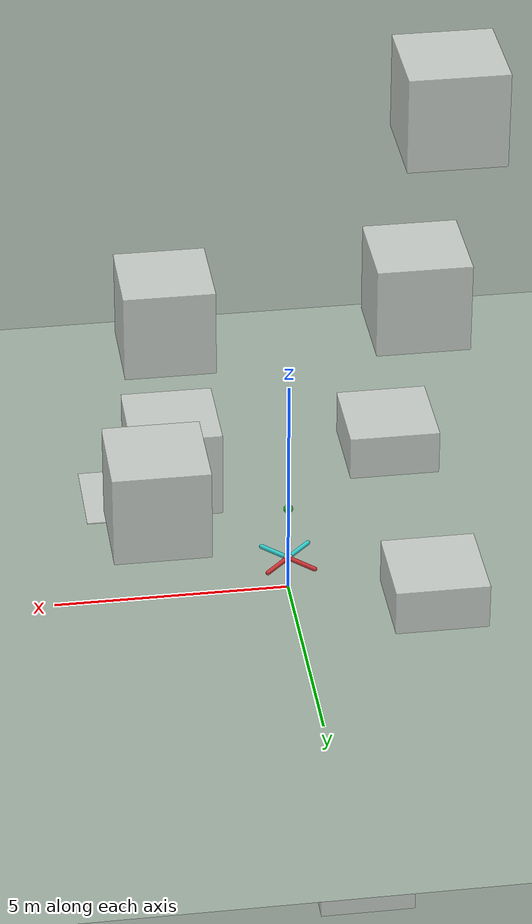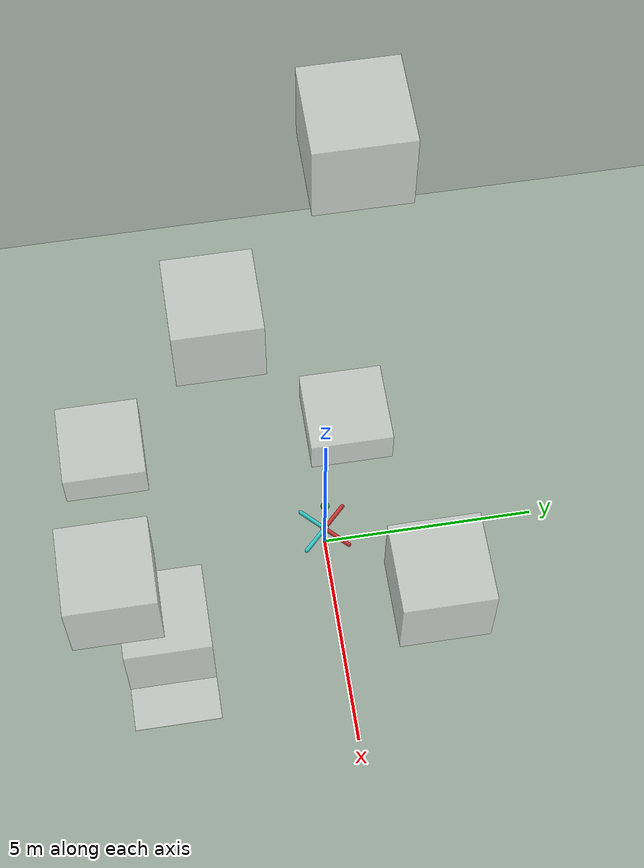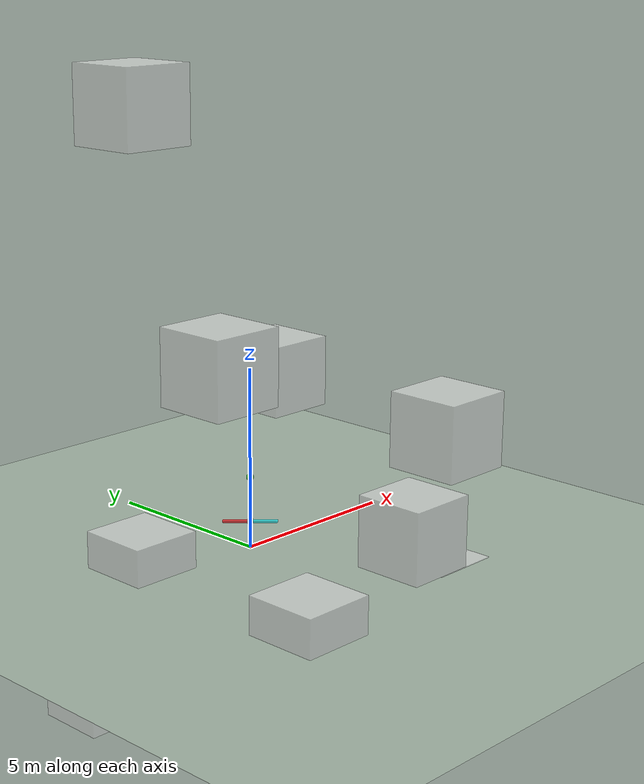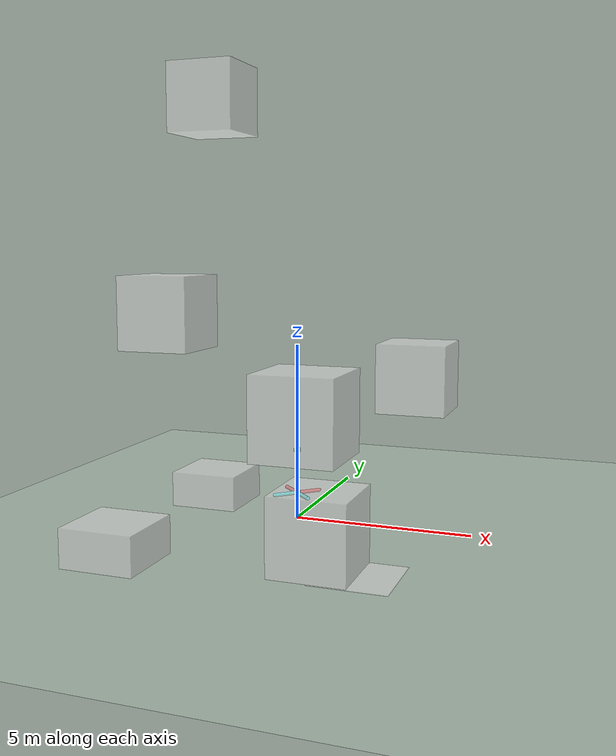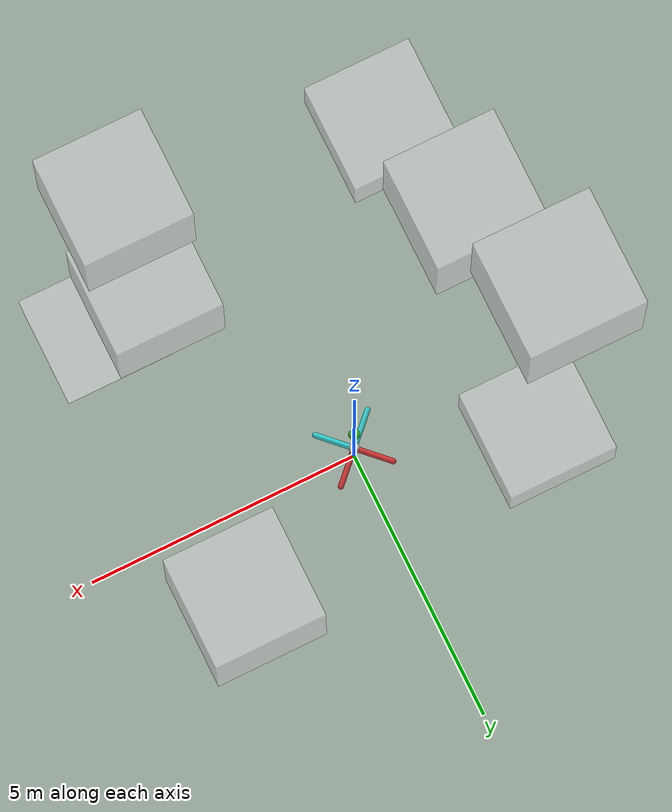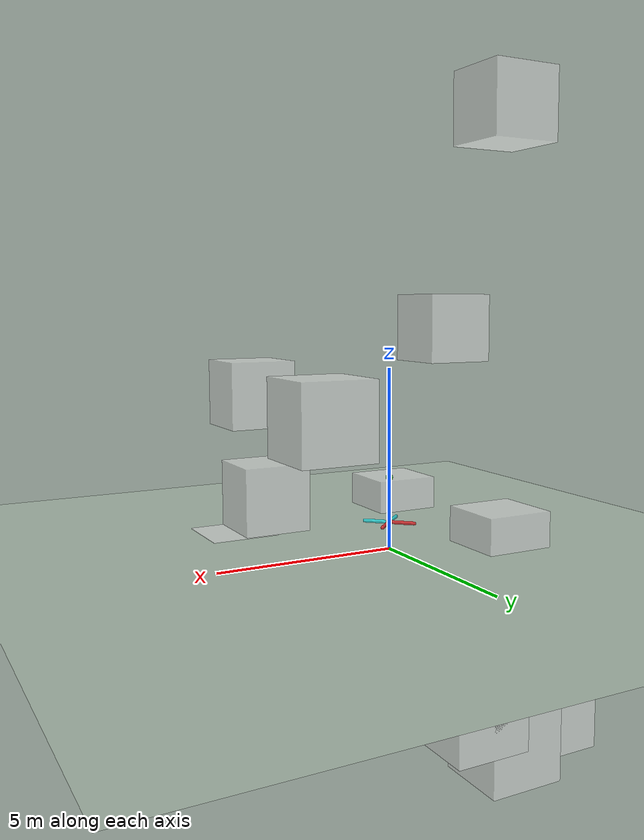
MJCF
<mujoco model="quadrotor">
  <compiler angle="degree" coordinate="local" inertiafromgeom="true" />
  <option integrator="RK4" timestep="0.01" />
  <default>
    <joint armature="1" damping="1" limited="true" />
    <geom conaffinity="0" condim="3" density="5.0" friction="1 0.5 0.5" margin="0.01" rgba="0.8 0.6 0.4 1" />
  </default>
  <asset>
    <texture builtin="gradient" height="100" rgb1="1 1 1" rgb2="0 0 0" type="skybox" width="100" />
    <texture builtin="flat" height="1278" mark="cross" markrgb="1 1 1" name="texgeom" random="0.01" rgb1="0.8 0.6 0.4" rgb2="0.8 0.6 0.4" type="cube" width="127" />
    <texture builtin="checker" height="100" name="texplane" rgb1="0 0 0" rgb2="0.8 0.8 0.8" type="2d" width="100" />
    <material name="MatPlane" reflectance="0.5" shininess="1" specular="1" texrepeat="60 60" texture="texplane" />
    <material name="geom" texture="texgeom" texuniform="true" />
  </asset>
  <worldbody>
    <light cutoff="100" diffuse="1 1 1" dir="-0 0 -1.3" directional="true" exponent="1" pos="0 0 1.3" specular=".1 .1 .1" />
    <geom conaffinity="1" condim="3" material="MatPlane" name="floor" pos="0 0 0" rgba="0.8 0.9 0.8 1" size="40 40 40" type="plane" />
    <body name="copterbody" pos="0 0 0.75">
      <camera mode="trackcom" name="track" pos="0 -3 0.3" xyaxes="1 0 0 0 0 1" />
      <geom conaffinity="0" contype="0" name="body_geom" pos="0 0 0" rgba="0.8 0.8 0.8 1" size="0.1" type="sphere" />
      <joint armature="0" damping="0" limited="false" margin="0.01" name="root" pos="0 0 0" type="free" />
      <body name="front_right_frame" pos="0 0 0">
        <geom fromto="0.0 0.0 0.0 0.5 0.5 0.0" name="aux_1_geom" rgba="0.8 0.2 0.2 1" size="0.05" type="capsule" />
      </body>
      <body name="front_left_frame" pos="0 0 0">
        <geom fromto="0.0 0.0 0.0 -0.5 0.5 0.0" name="aux_2_geom" rgba="0.8 0.2 0.2 1" size="0.05" type="capsule" />
      </body>
      <body name="back_left_frame" pos="0 0 0">
        <geom fromto="0.0 0.0 0.0 -0.5 -0.5 0.0" name="aux_3_geom" rgba="0.2 0.8 0.8 1" size="0.05" type="capsule" />
      </body>
      <body name="back_right_frame" pos="0 0 0">
        <geom fromto="0.0 0.0 0.0 0.5 -0.5 0.0" name="aux_4_geom" rgba="0.2 0.8 0.8 1" size="0.05" type="capsule" />
      </body>
    </body>
    <body name="copterbody2" pos="0 0 0.75">
      <geom conaffinity="0" contype="0" name="body_geom2" pos="0 0 0" rgba="0.8 0.8 0.8 1" size="0.1" type="sphere" />
      <body name="front_right_frame2" pos="0 0 0">
        <geom fromto="0.0 0.0 0.0 0.5 0.5 0.0" name="aux_1_geom2" rgba="0.8 0.2 0.2 1" size="0.05" type="capsule" />
      </body>
      <body name="front_left_frame2" pos="0 0 0">
        <geom fromto="0.0 0.0 0.0 -0.5 0.5 0.0" name="aux_2_geom2" rgba="0.8 0.2 0.2 1" size="0.05" type="capsule" />
      </body>
      <body name="back_left_frame2" pos="0 0 0">
        <geom fromto="0.0 0.0 0.0 -0.5 -0.5 0.0" name="aux_3_geom2" rgba="0.2 0.8 0.8 1" size="0.05" type="capsule" />
      </body>
      <body name="back_right_frame2" pos="0 0 0">
        <geom fromto="0.0 0.0 0.0 0.5 -0.5 0.0" name="aux_4_geom2" rgba="0.2 0.8 0.8 1" size="0.05" type="capsule" />
      </body>
    </body>
    <body name="target" pos="0 0 0">
        <geom name="target_geom" pos="0 0 2" rgba="0.2 0.8 0.2 1" size="0.1" type="sphere" />
    </body>
    <body name="box1" pos="2 -4 1">
	<geom conaffinity="0" contype="0" pos="0 0 0" rgba="1.0 1.0 1.0 0.5" size="1 1 1" type="box" />
    </body>
    <body name="box2" pos="3 -4 -1">
	<geom conaffinity="0" contype="0" pos="0 0 0" rgba="1.0 1.0 1.0 0.5" size="1 1 1" type="box" />
    </body>
    <body name="box3" pos="0 4 -3">
	<geom conaffinity="0" contype="0" pos="0 0 0" rgba="1.0 1.0 1.0 0.5" size="1 1 1" type="box" />
    </body>
    <body name="box4" pos="3 2 4">
	<geom conaffinity="0" contype="0" pos="0 0 0" rgba="1.0 1.0 1.0 0.5" size="1 1 1" type="box" />
    </body>
    <body name="box5" pos="-1 4 -4">
	<geom conaffinity="0" contype="0" pos="0 0 0" rgba="1.0 1.0 1.0 0.5" size="1 1 1" type="box" />
    </body>
    <body name="box6" pos="-3 1 0">
	<geom conaffinity="0" contype="0" pos="0 0 0" rgba="1.0 1.0 1.0 0.5" size="1 1 1" type="box" />
    </body>
    <body name="box7" pos="-3 3 -4">
	<geom conaffinity="0" contype="0" pos="0 0 0" rgba="1.0 1.0 1.0 0.5" size="1 1 1" type="box" />
    </body>
    <body name="box8" pos="-2 2 -4">
	<geom conaffinity="0" contype="0" pos="0 0 0" rgba="1.0 1.0 1.0 0.5" size="1 1 1" type="box" />
    </body>
    <body name="box9" pos="2 -5 4">
	<geom conaffinity="0" contype="0" pos="0 0 0" rgba="1.0 1.0 1.0 0.5" size="1 1 1" type="box" />
    </body>
    <body name="box10" pos="-3 -5 0">
	<geom conaffinity="0" contype="0" pos="0 0 0" rgba="1.0 1.0 1.0 0.5" size="1 1 1" type="box" />
    <body name="box11" pos="0 3 6">
	<geom conaffinity="0" contype="0" pos="0 0 0" rgba="1.0 1.0 1.0 0.5" size="1 1 1" type="box" />
    </body>
    <body name="box12" pos="0 3 6">
	<geom conaffinity="0" contype="0" pos="0 0 0" rgba="1.0 1.0 1.0 0.5" size="1 1 1" type="box" />
    <body name="box13" pos="0 3 6">
	<geom conaffinity="0" contype="0" pos="0 0 0" rgba="1.0 1.0 1.0 0.5" size="1 1 1" type="box" />
    </body>
    <body name="box14" pos="0 3 6">
	<geom conaffinity="0" contype="0" pos="0 0 0" rgba="1.0 1.0 1.0 0.5" size="1 1 1" type="box" />
    </body>
    <body name="box15" pos="0 3 6">
	<geom conaffinity="0" contype="0" pos="0 0 0" rgba="1.0 1.0 1.0 0.5" size="1 1 1" type="box" />
    </body>
    <body name="box16" pos="0 3 6">
	<geom conaffinity="0" contype="0" pos="0 0 0" rgba="1.0 1.0 1.0 0.5" size="1 1 1" type="box" />
    </body>
    <body name="box17" pos="0 3 6">
	<geom conaffinity="0" contype="0" pos="0 0 0" rgba="1.0 1.0 1.0 0.5" size="1 1 1" type="box" />
    </body>
    <body name="box18" pos="0 3 6">
	<geom conaffinity="0" contype="0" pos="0 0 0" rgba="1.0 1.0 1.0 0.5" size="1 1 1" type="box" />
    </body>
    <body name="box19" pos="0 3 6">
	<geom conaffinity="0" contype="0" pos="0 0 0" rgba="1.0 1.0 1.0 0.5" size="1 1 1" type="box" />
    </body>
    <body name="box20" pos="0 3 6">
	<geom conaffinity="0" contype="0" pos="0 0 0" rgba="1.0 1.0 1.0 0.5" size="1 1 1" type="box" />
    </body>
    <body name="box21" pos="0 3 6">
	<geom conaffinity="0" contype="0" pos="0 0 0" rgba="1.0 1.0 1.0 0.5" size="1 1 1" type="box" />
    </body>
    <body name="box22" pos="0 3 6">
	<geom conaffinity="0" contype="0" pos="0 0 0" rgba="1.0 1.0 1.0 0.5" size="1 1 1" type="box" />
    </body>
    <body name="box23" pos="0 3 6">
	<geom conaffinity="0" contype="0" pos="0 0 0" rgba="1.0 1.0 1.0 0.5" size="1 1 1" type="box" />
    </body>
    <body name="box24" pos="0 3 6">
	<geom conaffinity="0" contype="0" pos="0 0 0" rgba="1.0 1.0 1.0 0.5" size="1 1 1" type="box" />
    </body>
    <body name="box25" pos="0 3 6">
	<geom conaffinity="0" contype="0" pos="0 0 0" rgba="1.0 1.0 1.0 0.5" size="1 1 1" type="box" />
    </body>
    </body>
    </body>
  </worldbody>
  <actuator>
  </actuator>
</mujoco>
